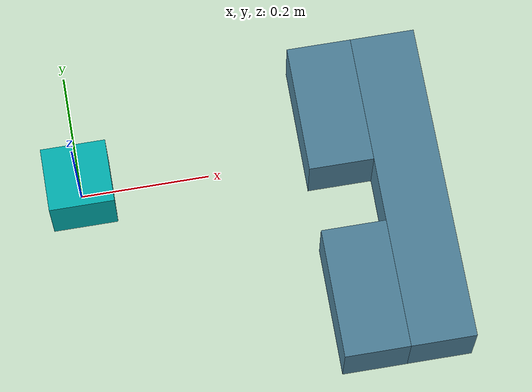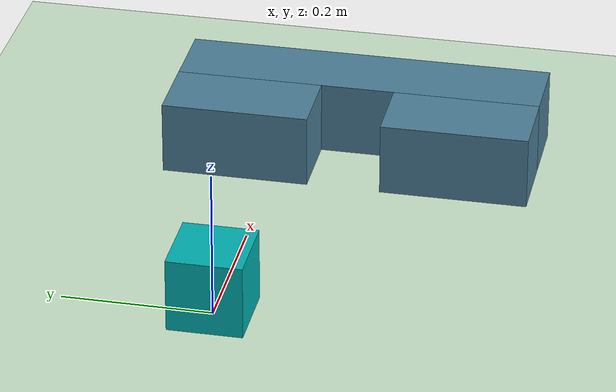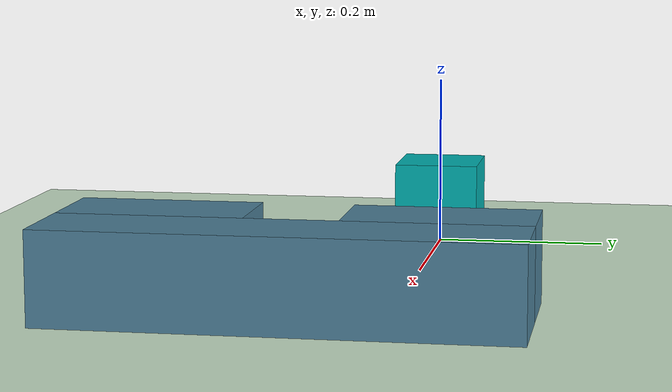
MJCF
<mujoco model="block_insert">
  <compiler inertiafromgeom="true" angle="radian" coordinate="local"/>
  <option timestep="0.01" gravity="0 0 0" iterations="20" integrator="RK4" />

  <default>
    <joint armature='0.04' damping="1" limited="true"/>
      <geom friction=".8 .1 .1" margin="0.002" condim="1" contype="0" conaffinity="0"/>
  </default>

  <worldbody>
  	<geom contype="1" conaffinity="0" condim="1" name="floor" pos="0 0 0" rgba="0.8 0.9 0.8 1" size="2 2 .1" type="plane" material="MatPlane"/>

   <body name="blockx" pos="0 0 0">
<!--      pos1-->
<!--      pos 2-->
          <!--      pos 3-->
      <!--      pos 4 this is used for the final exp-->
        <joint axis="1 0 0" limited="true" name="slidex" pos="0 0 0" range="0 1.0" damping="1" type="slide"/>
       <geom name="framex" pos="0 0 -0.002" rgba="0 0.7 0.7 1" size="0.001 0.001 0.001" mass ="0.001" contype="1" conaffinity="1" type="box"/>
			<body name="blocky" pos="0 0 0">
				<joint axis="0 1 0" limited="true" name="slidey" pos="0 0 0" range="-1.0 0.5" damping="1" type="slide"/>
				<geom name="framey" pos="0 0 0.05" rgba="0 0.7 0.7 1" size="0.05 0.04975 0.05" mass ="1" contype="1" conaffinity="0" friction=".5 0.01 0.01" type="box"/>
			</body>
    </body>

  <body name="fl1" pos="0 0 0">
      <joint name="fixedfl1" axis="1 0 0"  limited="true" pos="0 0 0" range="0 1.0" damping="1" type="fixed"/>
      <geom name="fl1" pos="0.4 0.05 0.05" rgba="0.3 0.5 0.6 1" type="box" size="0.05 0.1 0.05" contype="1" conaffinity="1" friction=".1 0.01 0.01" />
    </body>
  <body name="fl2" pos="0 0 0">
    <joint name="fixedfl2" axis="1 0 0"  limited="true" pos="0 0 0" range="0 1.0" damping="1" type="fixed"/>
    <geom name="fl2" pos="0.4 -0.25 0.05" rgba="0.3 0.5 0.6 1" type="box" size="0.05 0.1 0.05" contype="1" conaffinity="1" friction=".1 0.01 0.01" />
    </body>
    <body name="fl3" pos="0 0 0">
      <joint name="fixedfl3" axis="1 0 0"  limited="true" pos="0 0 0" range="0 1.0" damping="1" type="fixed"/>
    <geom name="fl3" pos="0.5 -0.10 0.05" rgba="0.3 0.5 0.6 1" type="box" size="0.05 0.25 0.05" contype="1" conaffinity="1" friction=".1 0.01 0.01" />
    </body>
  </worldbody>

    <!-- ======================Visualizing the world================================== -->
    <asset>
        <texture type="skybox" builtin="gradient" rgb1=".4 .5 .6" rgb2="0 0 0"
            width="100" height="100"/>
        <texture builtin="flat" height="1278" mark="cross" markrgb="1 1 1" name="texgeom" random="0.01" rgb1="0.8 0.6 0.4" rgb2="0.8 0.6 0.4" type="cube" width="127"/>
        <texture builtin="checker" height="100" name="texplane" rgb1="0 0 0" rgb2="0.8 0.8 0.8" type="2d" width="100"/>
        <material name="MatPlane" reflectance="0.01" shininess="1" specular="1" texrepeat="60 60" texture="texplane"/>
        <material name="geom" texture="texgeom" texuniform="true"/>
    </asset>

  <actuator>
    <motor gear="1" joint="slidex" ctrlrange="-10.0 10.0" ctrllimited="false"/>
    <motor gear="1" joint="slidey" ctrlrange="-10.0 10.0" ctrllimited="false"/>
  </actuator>
</mujoco>
